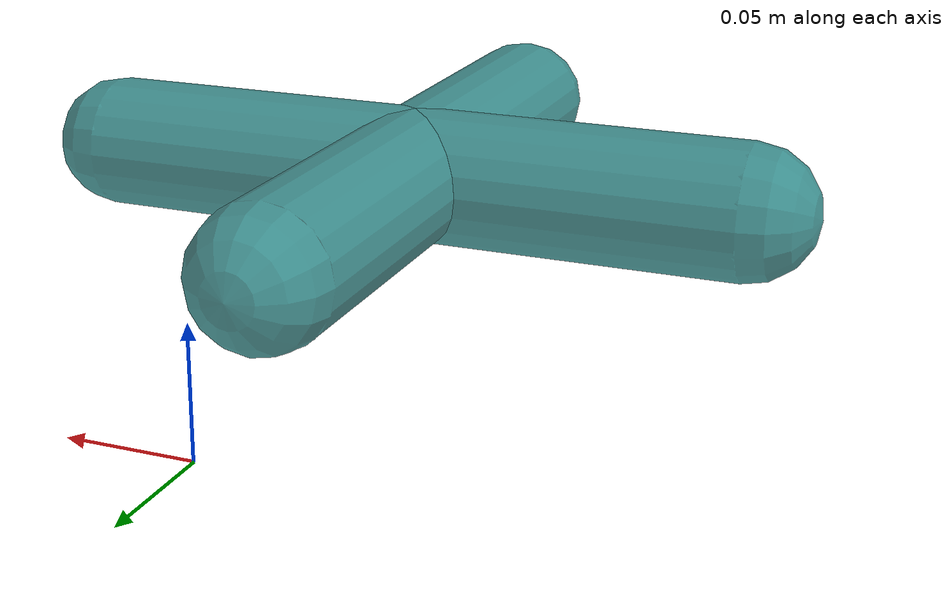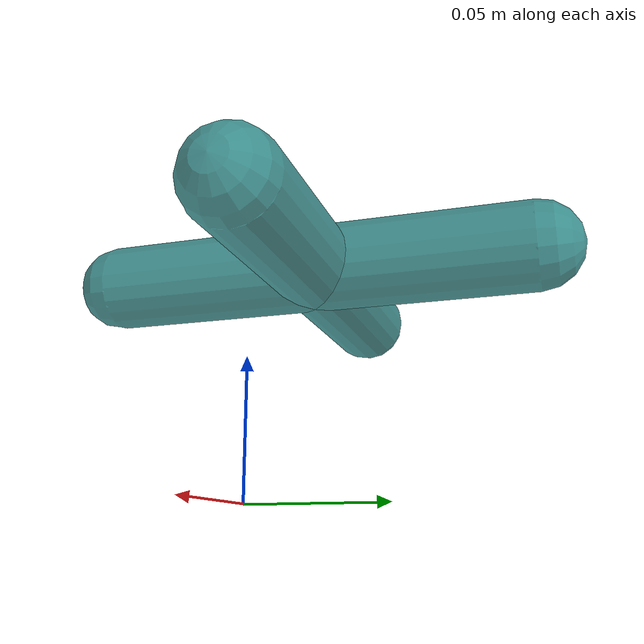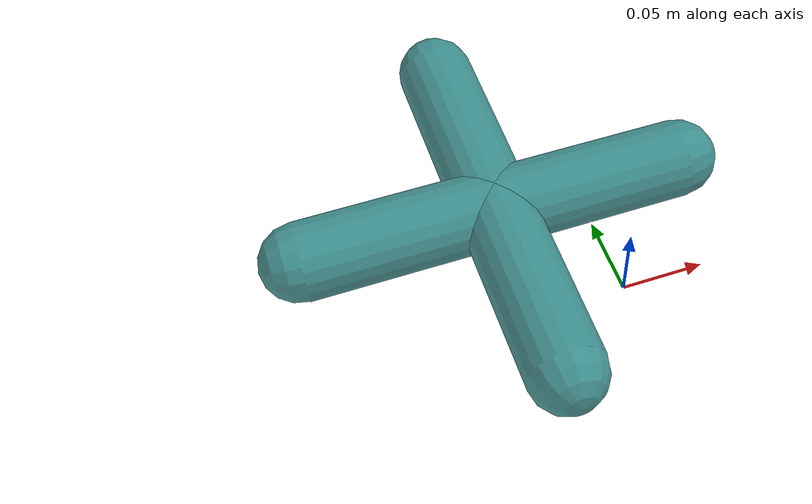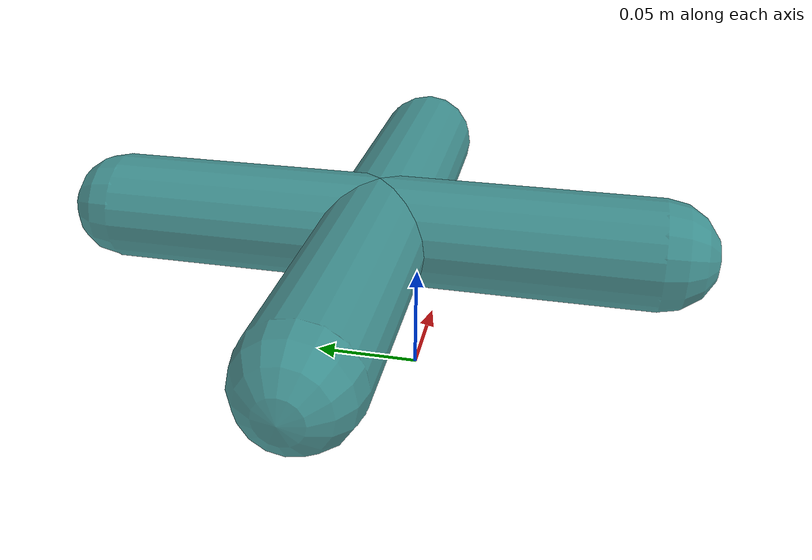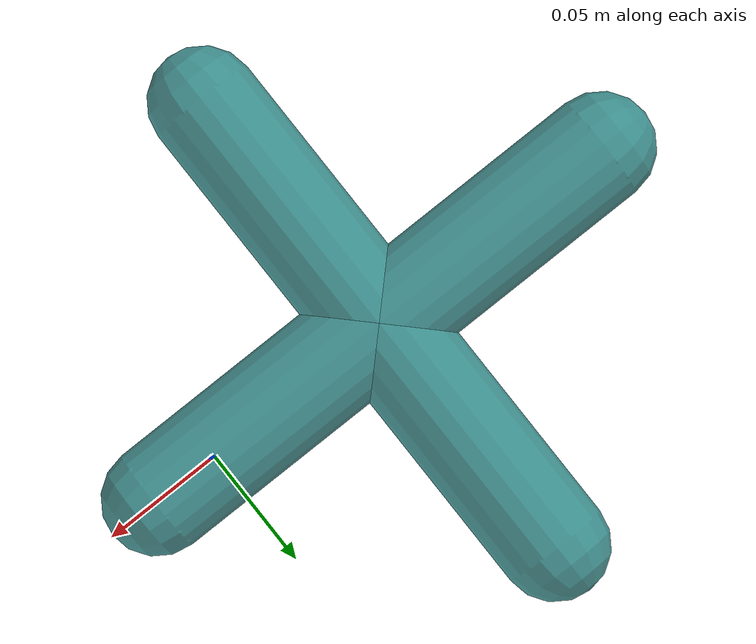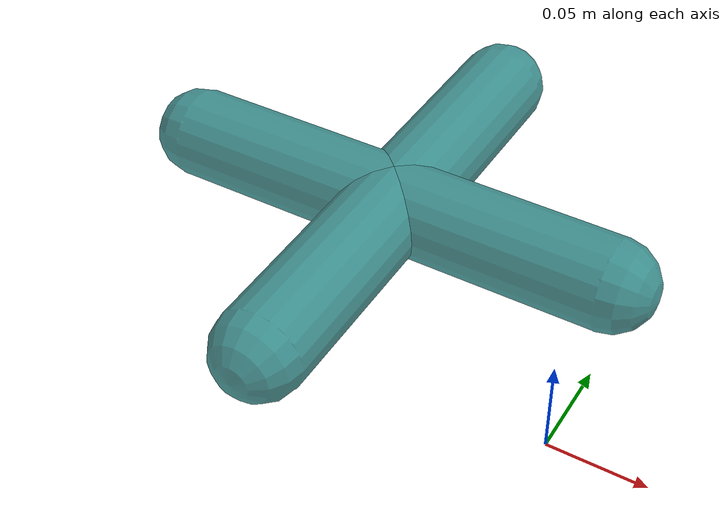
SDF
<?xml version="1.0"?>

<sdf version="1.7">
  <model name="valve_r0.03m">

    <joint name="world_valve_offset" type="fixed">
      <child>valve_root</child>
      <parent>world</parent>
      <axis>
        <limit>
          <effort>0</effort>
        </limit>
      </axis>
    </joint>

    <link name="valve_root">
      <!-- For sphere collision -->
      <pose relative_to="__model__">-0.08 0.0 0.11 0.0 0 0</pose>
      <!-- For cuboid collisions -->
    </link>

    <joint name="valve_root_joint" type="revolute">
        <child>valve_link</child>
        <parent>valve_root</parent>
        <axis>
          <xyz>0 0 1</xyz>
          <limit>
            <effort>0</effort>
          </limit>
        </axis>
    </joint>

    <link name="valve_link">
      <pose relative_to="valve_root">0 0 0 0 0 0</pose>
      <inertial>
        <mass>1.0</mass>
        <inertia>
          <ixx>0.001</ixx>
          <ixy>0</ixy>
          <ixz>0</ixz>
          <iyy>0.001</iyy>
          <iyz>0</iyz>
          <izz>0.001</izz>
        </inertia>
      </inertial>

      <visual name="visual_0">
        <pose relative_to="valve_root">0 0 0 1.5708 0 1.5708</pose>
        <geometry>
          <capsule>
            <radius>0.02</radius>
            <length>0.20</length>
          </capsule>
        </geometry>
        <material>
          <diffuse>0.1 0.5 0.5 0.8</diffuse>
        </material>
      </visual>

      <collision name="collision_0">
        <pose>0 0 0 1.5708 0 1.5708</pose>
        <geometry>
          <capsule>
            <radius>0.02</radius>
            <length>0.20</length>
          </capsule>
        </geometry>
        <surface>
          <friction>
            <ode>
              <mu>1.0</mu>
              <mu2>1.0</mu2>
            </ode>
          </friction>
        </surface>
      </collision>

      <visual name="visual_1">
        <pose relative_to="valve_root">0 0 0 1.5708 0 0</pose>
        <geometry>
          <capsule>
            <radius>0.02</radius>
            <length>0.20</length>
          </capsule>
        </geometry>
        <material>
          <diffuse>0.1 0.5 0.5 0.8</diffuse>
        </material>
      </visual>

      <collision name="collision_1">
        <pose>0 0 0 1.5708 0 0</pose>
        <geometry>
          <capsule>
            <radius>0.02</radius>
            <length>0.20</length>
          </capsule>
        </geometry>
        <surface>
          <friction>
            <ode>
              <mu>1.0</mu>
              <mu2>1.0</mu2>
            </ode>
          </friction>
        </surface>
      </collision>

    </link>

  </model>
</sdf>
